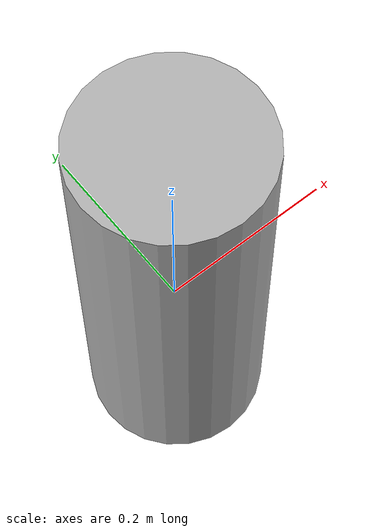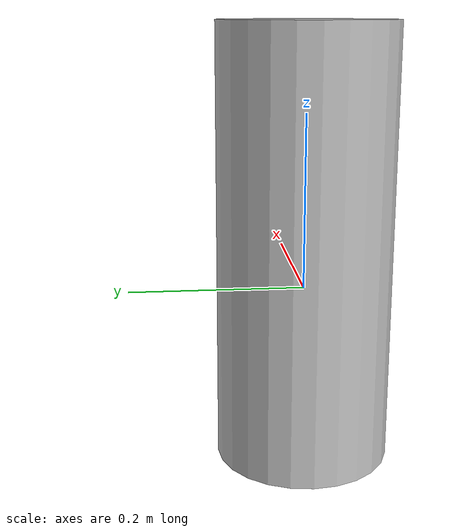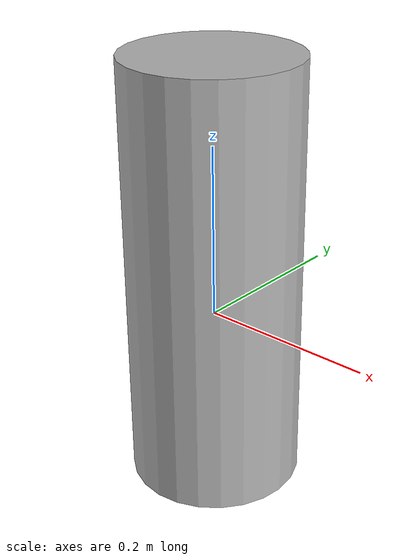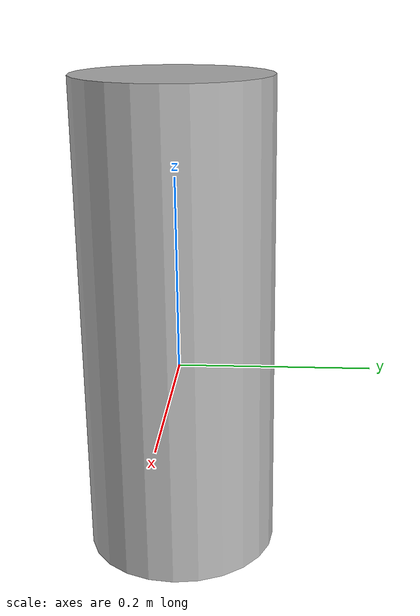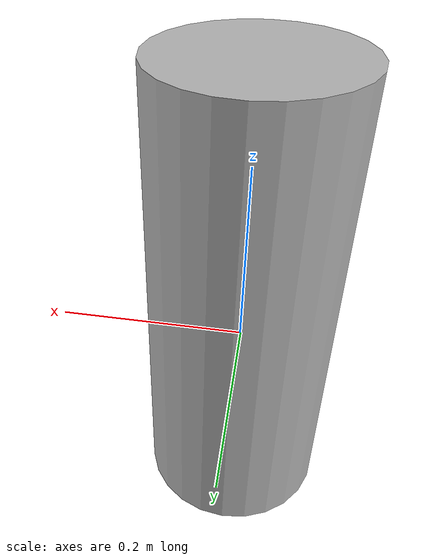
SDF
<?xml version="1.0" ?>
<sdf version="1.9">
  <model name="cylinder_platform">
    <static>true</static>
    <link name="link">
      <pose>0 0 0.05 0 0 0</pose>

      <!-- Collision -->
      <collision name="collision">
        <geometry>
          <cylinder>
            <radius>0.1</radius>
            <length>0.5</length>
          </cylinder>
        </geometry>
        <surface>
          <friction>
            <ode>
              <mu>1.0</mu>
              <mu2>1.0</mu2>
            </ode>
          </friction>
        </surface>
      </collision>

      <!-- Visual -->
      <visual name="visual">
        <geometry>
          <cylinder>
            <radius>0.1</radius>
            <length>0.5</length>
          </cylinder>
        </geometry>
        <material>
          <ambient>0.5 0.5 0.5 1</ambient>
          <diffuse>0.7 0.7 0.7 1</diffuse>
          <specular>0.3 0.3 0.3 1</specular>
        </material>
      </visual>
    </link>
  </model>
</sdf>
